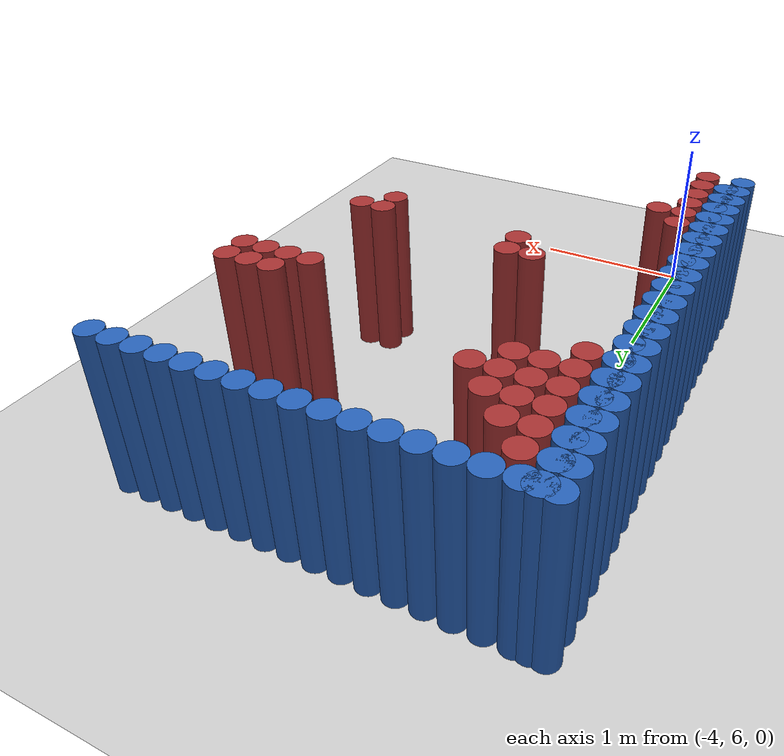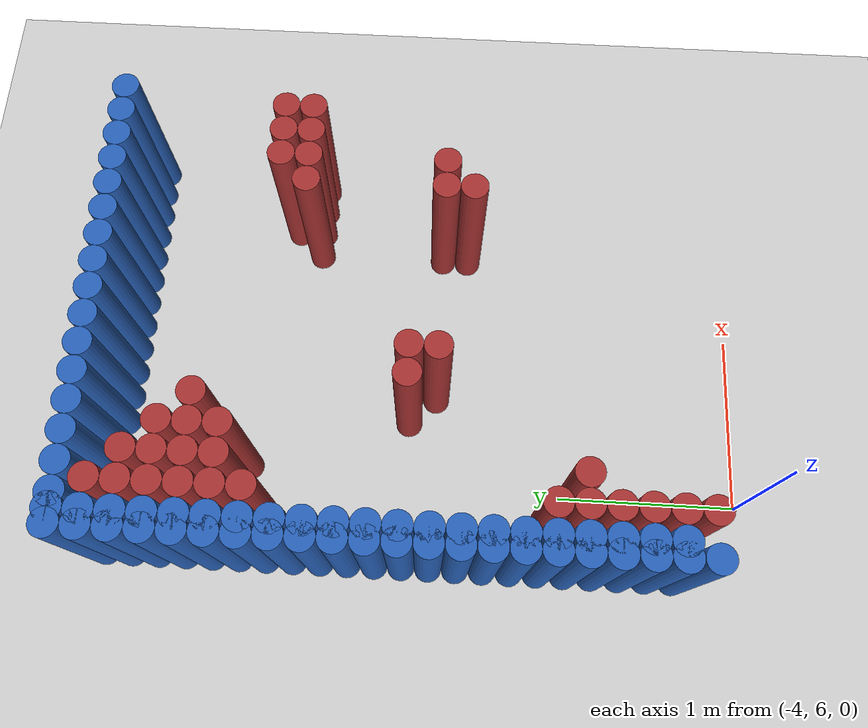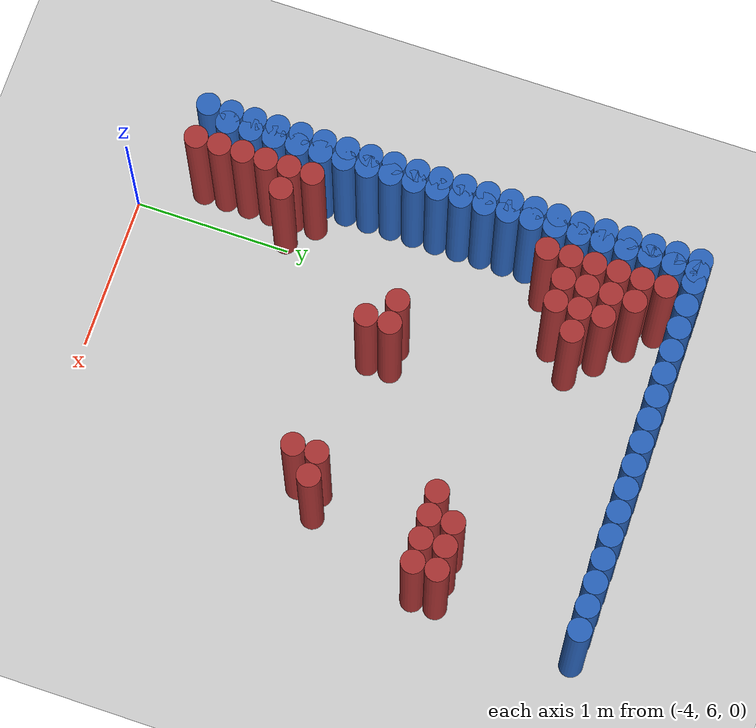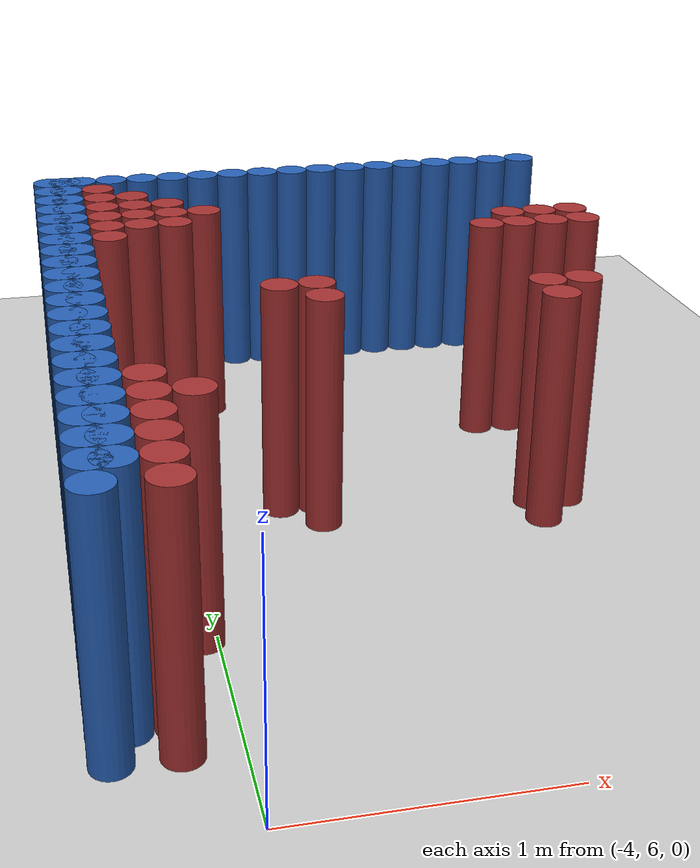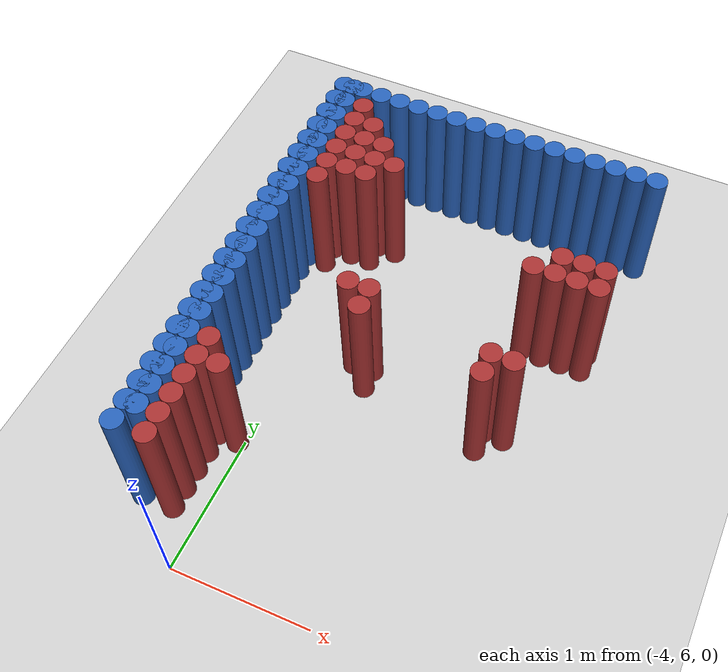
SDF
<sdf version="1.6">
 <world name="barn_world">
  <model name="ground_plane">
   <static>1</static>
   <link name="link">
    <collision name="collision">
     <geometry><plane><normal>0 0 1</normal><size>100 100</size></plane></geometry>
    </collision>
    <visual name="visual">
     <geometry><plane><normal>0 0 1</normal><size>100 100</size></plane></geometry>
     <material>
      <script><uri>file://media/materials/scripts/gazebo.material</uri><name>Gazebo/Grey</name></script>
     </material>
    </visual>
   </link>
  </model>
  <model name="unit_cylinder_135">
   <static>1</static>
   <pose>-4.3500 6.5250 0.5 0 0 0</pose>
   <link name="link">
    <collision name="collision">
     <geometry><cylinder><radius>0.075</radius><length>1</length></cylinder></geometry>
    </collision>
    <visual name="visual">
     <geometry><cylinder><radius>0.075</radius><length>1</length></cylinder></geometry>
     <material><ambient>0.152 0.379 0.72 1</ambient><diffuse>0.152 0.379 0.72 1</diffuse></material>
    </visual>
   </link>
  </model>
  <model name="unit_cylinder_136">
   <static>1</static>
   <pose>-4.3500 6.6750 0.5 0 0 0</pose>
   <link name="link">
    <collision name="collision">
     <geometry><cylinder><radius>0.075</radius><length>1</length></cylinder></geometry>
    </collision>
    <visual name="visual">
     <geometry><cylinder><radius>0.075</radius><length>1</length></cylinder></geometry>
     <material><ambient>0.152 0.379 0.72 1</ambient><diffuse>0.152 0.379 0.72 1</diffuse></material>
    </visual>
   </link>
  </model>
  <model name="unit_cylinder_137">
   <static>1</static>
   <pose>-4.3500 6.8250 0.5 0 0 0</pose>
   <link name="link">
    <collision name="collision">
     <geometry><cylinder><radius>0.075</radius><length>1</length></cylinder></geometry>
    </collision>
    <visual name="visual">
     <geometry><cylinder><radius>0.075</radius><length>1</length></cylinder></geometry>
     <material><ambient>0.152 0.379 0.72 1</ambient><diffuse>0.152 0.379 0.72 1</diffuse></material>
    </visual>
   </link>
  </model>
  <model name="unit_cylinder_138">
   <static>1</static>
   <pose>-4.3500 6.9750 0.5 0 0 0</pose>
   <link name="link">
    <collision name="collision">
     <geometry><cylinder><radius>0.075</radius><length>1</length></cylinder></geometry>
    </collision>
    <visual name="visual">
     <geometry><cylinder><radius>0.075</radius><length>1</length></cylinder></geometry>
     <material><ambient>0.152 0.379 0.72 1</ambient><diffuse>0.152 0.379 0.72 1</diffuse></material>
    </visual>
   </link>
  </model>
  <model name="unit_cylinder_139">
   <static>1</static>
   <pose>-4.3500 7.1250 0.5 0 0 0</pose>
   <link name="link">
    <collision name="collision">
     <geometry><cylinder><radius>0.075</radius><length>1</length></cylinder></geometry>
    </collision>
    <visual name="visual">
     <geometry><cylinder><radius>0.075</radius><length>1</length></cylinder></geometry>
     <material><ambient>0.152 0.379 0.72 1</ambient><diffuse>0.152 0.379 0.72 1</diffuse></material>
    </visual>
   </link>
  </model>
  <model name="unit_cylinder_140">
   <static>1</static>
   <pose>-4.3500 7.2750 0.5 0 0 0</pose>
   <link name="link">
    <collision name="collision">
     <geometry><cylinder><radius>0.075</radius><length>1</length></cylinder></geometry>
    </collision>
    <visual name="visual">
     <geometry><cylinder><radius>0.075</radius><length>1</length></cylinder></geometry>
     <material><ambient>0.152 0.379 0.72 1</ambient><diffuse>0.152 0.379 0.72 1</diffuse></material>
    </visual>
   </link>
  </model>
  <model name="unit_cylinder_141">
   <static>1</static>
   <pose>-4.3500 7.4250 0.5 0 0 0</pose>
   <link name="link">
    <collision name="collision">
     <geometry><cylinder><radius>0.075</radius><length>1</length></cylinder></geometry>
    </collision>
    <visual name="visual">
     <geometry><cylinder><radius>0.075</radius><length>1</length></cylinder></geometry>
     <material><ambient>0.152 0.379 0.72 1</ambient><diffuse>0.152 0.379 0.72 1</diffuse></material>
    </visual>
   </link>
  </model>
  <model name="unit_cylinder_142">
   <static>1</static>
   <pose>-4.3500 7.5750 0.5 0 0 0</pose>
   <link name="link">
    <collision name="collision">
     <geometry><cylinder><radius>0.075</radius><length>1</length></cylinder></geometry>
    </collision>
    <visual name="visual">
     <geometry><cylinder><radius>0.075</radius><length>1</length></cylinder></geometry>
     <material><ambient>0.152 0.379 0.72 1</ambient><diffuse>0.152 0.379 0.72 1</diffuse></material>
    </visual>
   </link>
  </model>
  <model name="unit_cylinder_143">
   <static>1</static>
   <pose>-4.3500 7.7250 0.5 0 0 0</pose>
   <link name="link">
    <collision name="collision">
     <geometry><cylinder><radius>0.075</radius><length>1</length></cylinder></geometry>
    </collision>
    <visual name="visual">
     <geometry><cylinder><radius>0.075</radius><length>1</length></cylinder></geometry>
     <material><ambient>0.152 0.379 0.72 1</ambient><diffuse>0.152 0.379 0.72 1</diffuse></material>
    </visual>
   </link>
  </model>
  <model name="unit_cylinder_144">
   <static>1</static>
   <pose>-4.3500 7.8750 0.5 0 0 0</pose>
   <link name="link">
    <collision name="collision">
     <geometry><cylinder><radius>0.075</radius><length>1</length></cylinder></geometry>
    </collision>
    <visual name="visual">
     <geometry><cylinder><radius>0.075</radius><length>1</length></cylinder></geometry>
     <material><ambient>0.152 0.379 0.72 1</ambient><diffuse>0.152 0.379 0.72 1</diffuse></material>
    </visual>
   </link>
  </model>
  <model name="unit_cylinder_145">
   <static>1</static>
   <pose>-4.3500 8.0250 0.5 0 0 0</pose>
   <link name="link">
    <collision name="collision">
     <geometry><cylinder><radius>0.075</radius><length>1</length></cylinder></geometry>
    </collision>
    <visual name="visual">
     <geometry><cylinder><radius>0.075</radius><length>1</length></cylinder></geometry>
     <material><ambient>0.152 0.379 0.72 1</ambient><diffuse>0.152 0.379 0.72 1</diffuse></material>
    </visual>
   </link>
  </model>
  <model name="unit_cylinder_146">
   <static>1</static>
   <pose>-4.3500 8.1750 0.5 0 0 0</pose>
   <link name="link">
    <collision name="collision">
     <geometry><cylinder><radius>0.075</radius><length>1</length></cylinder></geometry>
    </collision>
    <visual name="visual">
     <geometry><cylinder><radius>0.075</radius><length>1</length></cylinder></geometry>
     <material><ambient>0.152 0.379 0.72 1</ambient><diffuse>0.152 0.379 0.72 1</diffuse></material>
    </visual>
   </link>
  </model>
  <model name="unit_cylinder_147">
   <static>1</static>
   <pose>-4.3500 8.3250 0.5 0 0 0</pose>
   <link name="link">
    <collision name="collision">
     <geometry><cylinder><radius>0.075</radius><length>1</length></cylinder></geometry>
    </collision>
    <visual name="visual">
     <geometry><cylinder><radius>0.075</radius><length>1</length></cylinder></geometry>
     <material><ambient>0.152 0.379 0.72 1</ambient><diffuse>0.152 0.379 0.72 1</diffuse></material>
    </visual>
   </link>
  </model>
  <model name="unit_cylinder_148">
   <static>1</static>
   <pose>-4.3500 8.4750 0.5 0 0 0</pose>
   <link name="link">
    <collision name="collision">
     <geometry><cylinder><radius>0.075</radius><length>1</length></cylinder></geometry>
    </collision>
    <visual name="visual">
     <geometry><cylinder><radius>0.075</radius><length>1</length></cylinder></geometry>
     <material><ambient>0.152 0.379 0.72 1</ambient><diffuse>0.152 0.379 0.72 1</diffuse></material>
    </visual>
   </link>
  </model>
  <model name="unit_cylinder_149">
   <static>1</static>
   <pose>-4.3500 8.6250 0.5 0 0 0</pose>
   <link name="link">
    <collision name="collision">
     <geometry><cylinder><radius>0.075</radius><length>1</length></cylinder></geometry>
    </collision>
    <visual name="visual">
     <geometry><cylinder><radius>0.075</radius><length>1</length></cylinder></geometry>
     <material><ambient>0.152 0.379 0.72 1</ambient><diffuse>0.152 0.379 0.72 1</diffuse></material>
    </visual>
   </link>
  </model>
  <model name="unit_cylinder_150">
   <static>1</static>
   <pose>-4.3500 8.7750 0.5 0 0 0</pose>
   <link name="link">
    <collision name="collision">
     <geometry><cylinder><radius>0.075</radius><length>1</length></cylinder></geometry>
    </collision>
    <visual name="visual">
     <geometry><cylinder><radius>0.075</radius><length>1</length></cylinder></geometry>
     <material><ambient>0.152 0.379 0.72 1</ambient><diffuse>0.152 0.379 0.72 1</diffuse></material>
    </visual>
   </link>
  </model>
  <model name="unit_cylinder_151">
   <static>1</static>
   <pose>-4.3500 8.9250 0.5 0 0 0</pose>
   <link name="link">
    <collision name="collision">
     <geometry><cylinder><radius>0.075</radius><length>1</length></cylinder></geometry>
    </collision>
    <visual name="visual">
     <geometry><cylinder><radius>0.075</radius><length>1</length></cylinder></geometry>
     <material><ambient>0.152 0.379 0.72 1</ambient><diffuse>0.152 0.379 0.72 1</diffuse></material>
    </visual>
   </link>
  </model>
  <model name="unit_cylinder_152">
   <static>1</static>
   <pose>-4.3500 9.0750 0.5 0 0 0</pose>
   <link name="link">
    <collision name="collision">
     <geometry><cylinder><radius>0.075</radius><length>1</length></cylinder></geometry>
    </collision>
    <visual name="visual">
     <geometry><cylinder><radius>0.075</radius><length>1</length></cylinder></geometry>
     <material><ambient>0.152 0.379 0.72 1</ambient><diffuse>0.152 0.379 0.72 1</diffuse></material>
    </visual>
   </link>
  </model>
  <model name="unit_cylinder_153">
   <static>1</static>
   <pose>-4.3500 9.2250 0.5 0 0 0</pose>
   <link name="link">
    <collision name="collision">
     <geometry><cylinder><radius>0.075</radius><length>1</length></cylinder></geometry>
    </collision>
    <visual name="visual">
     <geometry><cylinder><radius>0.075</radius><length>1</length></cylinder></geometry>
     <material><ambient>0.152 0.379 0.72 1</ambient><diffuse>0.152 0.379 0.72 1</diffuse></material>
    </visual>
   </link>
  </model>
  <model name="unit_cylinder_154">
   <static>1</static>
   <pose>-4.3500 9.3750 0.5 0 0 0</pose>
   <link name="link">
    <collision name="collision">
     <geometry><cylinder><radius>0.075</radius><length>1</length></cylinder></geometry>
    </collision>
    <visual name="visual">
     <geometry><cylinder><radius>0.075</radius><length>1</length></cylinder></geometry>
     <material><ambient>0.152 0.379 0.72 1</ambient><diffuse>0.152 0.379 0.72 1</diffuse></material>
    </visual>
   </link>
  </model>
  <model name="unit_cylinder_155">
   <static>1</static>
   <pose>-4.3500 9.5250 0.5 0 0 0</pose>
   <link name="link">
    <collision name="collision">
     <geometry><cylinder><radius>0.075</radius><length>1</length></cylinder></geometry>
    </collision>
    <visual name="visual">
     <geometry><cylinder><radius>0.075</radius><length>1</length></cylinder></geometry>
     <material><ambient>0.152 0.379 0.72 1</ambient><diffuse>0.152 0.379 0.72 1</diffuse></material>
    </visual>
   </link>
  </model>
  <model name="unit_cylinder_162">
   <static>1</static>
   <pose>-4.2000 6.3750 0.5 0 0 0</pose>
   <link name="link">
    <collision name="collision">
     <geometry><cylinder><radius>0.075</radius><length>1</length></cylinder></geometry>
    </collision>
    <visual name="visual">
     <geometry><cylinder><radius>0.075</radius><length>1</length></cylinder></geometry>
     <material><ambient>0.648 0.192 0.192 1</ambient><diffuse>0.648 0.192 0.192 1</diffuse></material>
    </visual>
   </link>
  </model>
  <model name="unit_cylinder_163">
   <static>1</static>
   <pose>-4.2000 6.5250 0.5 0 0 0</pose>
   <link name="link">
    <collision name="collision">
     <geometry><cylinder><radius>0.075</radius><length>1</length></cylinder></geometry>
    </collision>
    <visual name="visual">
     <geometry><cylinder><radius>0.075</radius><length>1</length></cylinder></geometry>
     <material><ambient>0.648 0.192 0.192 1</ambient><diffuse>0.648 0.192 0.192 1</diffuse></material>
    </visual>
   </link>
  </model>
  <model name="unit_cylinder_164">
   <static>1</static>
   <pose>-4.2000 6.6750 0.5 0 0 0</pose>
   <link name="link">
    <collision name="collision">
     <geometry><cylinder><radius>0.075</radius><length>1</length></cylinder></geometry>
    </collision>
    <visual name="visual">
     <geometry><cylinder><radius>0.075</radius><length>1</length></cylinder></geometry>
     <material><ambient>0.648 0.192 0.192 1</ambient><diffuse>0.648 0.192 0.192 1</diffuse></material>
    </visual>
   </link>
  </model>
  <model name="unit_cylinder_165">
   <static>1</static>
   <pose>-4.2000 6.8250 0.5 0 0 0</pose>
   <link name="link">
    <collision name="collision">
     <geometry><cylinder><radius>0.075</radius><length>1</length></cylinder></geometry>
    </collision>
    <visual name="visual">
     <geometry><cylinder><radius>0.075</radius><length>1</length></cylinder></geometry>
     <material><ambient>0.648 0.192 0.192 1</ambient><diffuse>0.648 0.192 0.192 1</diffuse></material>
    </visual>
   </link>
  </model>
  <model name="unit_cylinder_166">
   <static>1</static>
   <pose>-4.2000 6.9750 0.5 0 0 0</pose>
   <link name="link">
    <collision name="collision">
     <geometry><cylinder><radius>0.075</radius><length>1</length></cylinder></geometry>
    </collision>
    <visual name="visual">
     <geometry><cylinder><radius>0.075</radius><length>1</length></cylinder></geometry>
     <material><ambient>0.648 0.192 0.192 1</ambient><diffuse>0.648 0.192 0.192 1</diffuse></material>
    </visual>
   </link>
  </model>
  <model name="unit_cylinder_167">
   <static>1</static>
   <pose>-4.2000 7.1250 0.5 0 0 0</pose>
   <link name="link">
    <collision name="collision">
     <geometry><cylinder><radius>0.075</radius><length>1</length></cylinder></geometry>
    </collision>
    <visual name="visual">
     <geometry><cylinder><radius>0.075</radius><length>1</length></cylinder></geometry>
     <material><ambient>0.648 0.192 0.192 1</ambient><diffuse>0.648 0.192 0.192 1</diffuse></material>
    </visual>
   </link>
  </model>
  <model name="unit_cylinder_168">
   <static>1</static>
   <pose>-4.2000 8.6250 0.5 0 0 0</pose>
   <link name="link">
    <collision name="collision">
     <geometry><cylinder><radius>0.075</radius><length>1</length></cylinder></geometry>
    </collision>
    <visual name="visual">
     <geometry><cylinder><radius>0.075</radius><length>1</length></cylinder></geometry>
     <material><ambient>0.648 0.192 0.192 1</ambient><diffuse>0.648 0.192 0.192 1</diffuse></material>
    </visual>
   </link>
  </model>
  <model name="unit_cylinder_169">
   <static>1</static>
   <pose>-4.2000 8.7750 0.5 0 0 0</pose>
   <link name="link">
    <collision name="collision">
     <geometry><cylinder><radius>0.075</radius><length>1</length></cylinder></geometry>
    </collision>
    <visual name="visual">
     <geometry><cylinder><radius>0.075</radius><length>1</length></cylinder></geometry>
     <material><ambient>0.648 0.192 0.192 1</ambient><diffuse>0.648 0.192 0.192 1</diffuse></material>
    </visual>
   </link>
  </model>
  <model name="unit_cylinder_170">
   <static>1</static>
   <pose>-4.2000 8.9250 0.5 0 0 0</pose>
   <link name="link">
    <collision name="collision">
     <geometry><cylinder><radius>0.075</radius><length>1</length></cylinder></geometry>
    </collision>
    <visual name="visual">
     <geometry><cylinder><radius>0.075</radius><length>1</length></cylinder></geometry>
     <material><ambient>0.648 0.192 0.192 1</ambient><diffuse>0.648 0.192 0.192 1</diffuse></material>
    </visual>
   </link>
  </model>
  <model name="unit_cylinder_171">
   <static>1</static>
   <pose>-4.2000 9.0750 0.5 0 0 0</pose>
   <link name="link">
    <collision name="collision">
     <geometry><cylinder><radius>0.075</radius><length>1</length></cylinder></geometry>
    </collision>
    <visual name="visual">
     <geometry><cylinder><radius>0.075</radius><length>1</length></cylinder></geometry>
     <material><ambient>0.648 0.192 0.192 1</ambient><diffuse>0.648 0.192 0.192 1</diffuse></material>
    </visual>
   </link>
  </model>
  <model name="unit_cylinder_172">
   <static>1</static>
   <pose>-4.2000 9.2250 0.5 0 0 0</pose>
   <link name="link">
    <collision name="collision">
     <geometry><cylinder><radius>0.075</radius><length>1</length></cylinder></geometry>
    </collision>
    <visual name="visual">
     <geometry><cylinder><radius>0.075</radius><length>1</length></cylinder></geometry>
     <material><ambient>0.648 0.192 0.192 1</ambient><diffuse>0.648 0.192 0.192 1</diffuse></material>
    </visual>
   </link>
  </model>
  <model name="unit_cylinder_173">
   <static>1</static>
   <pose>-4.2000 9.3750 0.5 0 0 0</pose>
   <link name="link">
    <collision name="collision">
     <geometry><cylinder><radius>0.075</radius><length>1</length></cylinder></geometry>
    </collision>
    <visual name="visual">
     <geometry><cylinder><radius>0.075</radius><length>1</length></cylinder></geometry>
     <material><ambient>0.648 0.192 0.192 1</ambient><diffuse>0.648 0.192 0.192 1</diffuse></material>
    </visual>
   </link>
  </model>
  <model name="unit_cylinder_178">
   <static>1</static>
   <pose>-4.0500 6.9750 0.5 0 0 0</pose>
   <link name="link">
    <collision name="collision">
     <geometry><cylinder><radius>0.075</radius><length>1</length></cylinder></geometry>
    </collision>
    <visual name="visual">
     <geometry><cylinder><radius>0.075</radius><length>1</length></cylinder></geometry>
     <material><ambient>0.648 0.192 0.192 1</ambient><diffuse>0.648 0.192 0.192 1</diffuse></material>
    </visual>
   </link>
  </model>
  <model name="unit_cylinder_179">
   <static>1</static>
   <pose>-4.0500 8.7750 0.5 0 0 0</pose>
   <link name="link">
    <collision name="collision">
     <geometry><cylinder><radius>0.075</radius><length>1</length></cylinder></geometry>
    </collision>
    <visual name="visual">
     <geometry><cylinder><radius>0.075</radius><length>1</length></cylinder></geometry>
     <material><ambient>0.648 0.192 0.192 1</ambient><diffuse>0.648 0.192 0.192 1</diffuse></material>
    </visual>
   </link>
  </model>
  <model name="unit_cylinder_180">
   <static>1</static>
   <pose>-4.0500 8.9250 0.5 0 0 0</pose>
   <link name="link">
    <collision name="collision">
     <geometry><cylinder><radius>0.075</radius><length>1</length></cylinder></geometry>
    </collision>
    <visual name="visual">
     <geometry><cylinder><radius>0.075</radius><length>1</length></cylinder></geometry>
     <material><ambient>0.648 0.192 0.192 1</ambient><diffuse>0.648 0.192 0.192 1</diffuse></material>
    </visual>
   </link>
  </model>
  <model name="unit_cylinder_181">
   <static>1</static>
   <pose>-4.0500 9.0750 0.5 0 0 0</pose>
   <link name="link">
    <collision name="collision">
     <geometry><cylinder><radius>0.075</radius><length>1</length></cylinder></geometry>
    </collision>
    <visual name="visual">
     <geometry><cylinder><radius>0.075</radius><length>1</length></cylinder></geometry>
     <material><ambient>0.648 0.192 0.192 1</ambient><diffuse>0.648 0.192 0.192 1</diffuse></material>
    </visual>
   </link>
  </model>
  <model name="unit_cylinder_182">
   <static>1</static>
   <pose>-4.0500 9.2250 0.5 0 0 0</pose>
   <link name="link">
    <collision name="collision">
     <geometry><cylinder><radius>0.075</radius><length>1</length></cylinder></geometry>
    </collision>
    <visual name="visual">
     <geometry><cylinder><radius>0.075</radius><length>1</length></cylinder></geometry>
     <material><ambient>0.648 0.192 0.192 1</ambient><diffuse>0.648 0.192 0.192 1</diffuse></material>
    </visual>
   </link>
  </model>
  <model name="unit_cylinder_187">
   <static>1</static>
   <pose>-3.9000 8.7750 0.5 0 0 0</pose>
   <link name="link">
    <collision name="collision">
     <geometry><cylinder><radius>0.075</radius><length>1</length></cylinder></geometry>
    </collision>
    <visual name="visual">
     <geometry><cylinder><radius>0.075</radius><length>1</length></cylinder></geometry>
     <material><ambient>0.648 0.192 0.192 1</ambient><diffuse>0.648 0.192 0.192 1</diffuse></material>
    </visual>
   </link>
  </model>
  <model name="unit_cylinder_188">
   <static>1</static>
   <pose>-3.9000 8.9250 0.5 0 0 0</pose>
   <link name="link">
    <collision name="collision">
     <geometry><cylinder><radius>0.075</radius><length>1</length></cylinder></geometry>
    </collision>
    <visual name="visual">
     <geometry><cylinder><radius>0.075</radius><length>1</length></cylinder></geometry>
     <material><ambient>0.648 0.192 0.192 1</ambient><diffuse>0.648 0.192 0.192 1</diffuse></material>
    </visual>
   </link>
  </model>
  <model name="unit_cylinder_189">
   <static>1</static>
   <pose>-3.9000 9.0750 0.5 0 0 0</pose>
   <link name="link">
    <collision name="collision">
     <geometry><cylinder><radius>0.075</radius><length>1</length></cylinder></geometry>
    </collision>
    <visual name="visual">
     <geometry><cylinder><radius>0.075</radius><length>1</length></cylinder></geometry>
     <material><ambient>0.648 0.192 0.192 1</ambient><diffuse>0.648 0.192 0.192 1</diffuse></material>
    </visual>
   </link>
  </model>
  <model name="unit_cylinder_193">
   <static>1</static>
   <pose>-3.7500 8.9250 0.5 0 0 0</pose>
   <link name="link">
    <collision name="collision">
     <geometry><cylinder><radius>0.075</radius><length>1</length></cylinder></geometry>
    </collision>
    <visual name="visual">
     <geometry><cylinder><radius>0.075</radius><length>1</length></cylinder></geometry>
     <material><ambient>0.648 0.192 0.192 1</ambient><diffuse>0.648 0.192 0.192 1</diffuse></material>
    </visual>
   </link>
  </model>
  <model name="unit_cylinder_195">
   <static>1</static>
   <pose>-3.6000 7.8750 0.5 0 0 0</pose>
   <link name="link">
    <collision name="collision">
     <geometry><cylinder><radius>0.075</radius><length>1</length></cylinder></geometry>
    </collision>
    <visual name="visual">
     <geometry><cylinder><radius>0.075</radius><length>1</length></cylinder></geometry>
     <material><ambient>0.648 0.192 0.192 1</ambient><diffuse>0.648 0.192 0.192 1</diffuse></material>
    </visual>
   </link>
  </model>
  <model name="unit_cylinder_196">
   <static>1</static>
   <pose>-3.4500 7.7250 0.5 0 0 0</pose>
   <link name="link">
    <collision name="collision">
     <geometry><cylinder><radius>0.075</radius><length>1</length></cylinder></geometry>
    </collision>
    <visual name="visual">
     <geometry><cylinder><radius>0.075</radius><length>1</length></cylinder></geometry>
     <material><ambient>0.648 0.192 0.192 1</ambient><diffuse>0.648 0.192 0.192 1</diffuse></material>
    </visual>
   </link>
  </model>
  <model name="unit_cylinder_197">
   <static>1</static>
   <pose>-3.4500 7.8750 0.5 0 0 0</pose>
   <link name="link">
    <collision name="collision">
     <geometry><cylinder><radius>0.075</radius><length>1</length></cylinder></geometry>
    </collision>
    <visual name="visual">
     <geometry><cylinder><radius>0.075</radius><length>1</length></cylinder></geometry>
     <material><ambient>0.648 0.192 0.192 1</ambient><diffuse>0.648 0.192 0.192 1</diffuse></material>
    </visual>
   </link>
  </model>
  <model name="unit_cylinder_198">
   <static>1</static>
   <pose>-2.5500 7.5750 0.5 0 0 0</pose>
   <link name="link">
    <collision name="collision">
     <geometry><cylinder><radius>0.075</radius><length>1</length></cylinder></geometry>
    </collision>
    <visual name="visual">
     <geometry><cylinder><radius>0.075</radius><length>1</length></cylinder></geometry>
     <material><ambient>0.648 0.192 0.192 1</ambient><diffuse>0.648 0.192 0.192 1</diffuse></material>
    </visual>
   </link>
  </model>
  <model name="unit_cylinder_199">
   <static>1</static>
   <pose>-2.5500 7.7250 0.5 0 0 0</pose>
   <link name="link">
    <collision name="collision">
     <geometry><cylinder><radius>0.075</radius><length>1</length></cylinder></geometry>
    </collision>
    <visual name="visual">
     <geometry><cylinder><radius>0.075</radius><length>1</length></cylinder></geometry>
     <material><ambient>0.648 0.192 0.192 1</ambient><diffuse>0.648 0.192 0.192 1</diffuse></material>
    </visual>
   </link>
  </model>
  <model name="unit_cylinder_200">
   <static>1</static>
   <pose>-2.5500 8.4750 0.5 0 0 0</pose>
   <link name="link">
    <collision name="collision">
     <geometry><cylinder><radius>0.075</radius><length>1</length></cylinder></geometry>
    </collision>
    <visual name="visual">
     <geometry><cylinder><radius>0.075</radius><length>1</length></cylinder></geometry>
     <material><ambient>0.648 0.192 0.192 1</ambient><diffuse>0.648 0.192 0.192 1</diffuse></material>
    </visual>
   </link>
  </model>
  <model name="unit_cylinder_201">
   <static>1</static>
   <pose>-2.4000 7.7250 0.5 0 0 0</pose>
   <link name="link">
    <collision name="collision">
     <geometry><cylinder><radius>0.075</radius><length>1</length></cylinder></geometry>
    </collision>
    <visual name="visual">
     <geometry><cylinder><radius>0.075</radius><length>1</length></cylinder></geometry>
     <material><ambient>0.648 0.192 0.192 1</ambient><diffuse>0.648 0.192 0.192 1</diffuse></material>
    </visual>
   </link>
  </model>
  <model name="unit_cylinder_202">
   <static>1</static>
   <pose>-2.4000 8.4750 0.5 0 0 0</pose>
   <link name="link">
    <collision name="collision">
     <geometry><cylinder><radius>0.075</radius><length>1</length></cylinder></geometry>
    </collision>
    <visual name="visual">
     <geometry><cylinder><radius>0.075</radius><length>1</length></cylinder></geometry>
     <material><ambient>0.648 0.192 0.192 1</ambient><diffuse>0.648 0.192 0.192 1</diffuse></material>
    </visual>
   </link>
  </model>
  <model name="unit_cylinder_203">
   <static>1</static>
   <pose>-2.4000 8.6250 0.5 0 0 0</pose>
   <link name="link">
    <collision name="collision">
     <geometry><cylinder><radius>0.075</radius><length>1</length></cylinder></geometry>
    </collision>
    <visual name="visual">
     <geometry><cylinder><radius>0.075</radius><length>1</length></cylinder></geometry>
     <material><ambient>0.648 0.192 0.192 1</ambient><diffuse>0.648 0.192 0.192 1</diffuse></material>
    </visual>
   </link>
  </model>
  <model name="unit_cylinder_205">
   <static>1</static>
   <pose>-2.2500 8.4750 0.5 0 0 0</pose>
   <link name="link">
    <collision name="collision">
     <geometry><cylinder><radius>0.075</radius><length>1</length></cylinder></geometry>
    </collision>
    <visual name="visual">
     <geometry><cylinder><radius>0.075</radius><length>1</length></cylinder></geometry>
     <material><ambient>0.648 0.192 0.192 1</ambient><diffuse>0.648 0.192 0.192 1</diffuse></material>
    </visual>
   </link>
  </model>
  <model name="unit_cylinder_206">
   <static>1</static>
   <pose>-2.2500 8.6250 0.5 0 0 0</pose>
   <link name="link">
    <collision name="collision">
     <geometry><cylinder><radius>0.075</radius><length>1</length></cylinder></geometry>
    </collision>
    <visual name="visual">
     <geometry><cylinder><radius>0.075</radius><length>1</length></cylinder></geometry>
     <material><ambient>0.648 0.192 0.192 1</ambient><diffuse>0.648 0.192 0.192 1</diffuse></material>
    </visual>
   </link>
  </model>
  <model name="unit_cylinder_209">
   <static>1</static>
   <pose>-2.1000 8.4750 0.5 0 0 0</pose>
   <link name="link">
    <collision name="collision">
     <geometry><cylinder><radius>0.075</radius><length>1</length></cylinder></geometry>
    </collision>
    <visual name="visual">
     <geometry><cylinder><radius>0.075</radius><length>1</length></cylinder></geometry>
     <material><ambient>0.648 0.192 0.192 1</ambient><diffuse>0.648 0.192 0.192 1</diffuse></material>
    </visual>
   </link>
  </model>
  <model name="unit_cylinder_210">
   <static>1</static>
   <pose>-2.1000 8.6250 0.5 0 0 0</pose>
   <link name="link">
    <collision name="collision">
     <geometry><cylinder><radius>0.075</radius><length>1</length></cylinder></geometry>
    </collision>
    <visual name="visual">
     <geometry><cylinder><radius>0.075</radius><length>1</length></cylinder></geometry>
     <material><ambient>0.648 0.192 0.192 1</ambient><diffuse>0.648 0.192 0.192 1</diffuse></material>
    </visual>
   </link>
  </model>
  <model name="unit_cylinder_297">
   <static>1</static>
   <pose>-2.0250 9.5250 0.5 0 0 0</pose>
   <link name="link">
    <collision name="collision">
     <geometry><cylinder><radius>0.075</radius><length>1</length></cylinder></geometry>
    </collision>
    <visual name="visual">
     <geometry><cylinder><radius>0.075</radius><length>1</length></cylinder></geometry>
     <material><ambient>0.152 0.379 0.72 1</ambient><diffuse>0.152 0.379 0.72 1</diffuse></material>
    </visual>
   </link>
  </model>
  <model name="unit_cylinder_298">
   <static>1</static>
   <pose>-2.1750 9.5250 0.5 0 0 0</pose>
   <link name="link">
    <collision name="collision">
     <geometry><cylinder><radius>0.075</radius><length>1</length></cylinder></geometry>
    </collision>
    <visual name="visual">
     <geometry><cylinder><radius>0.075</radius><length>1</length></cylinder></geometry>
     <material><ambient>0.152 0.379 0.72 1</ambient><diffuse>0.152 0.379 0.72 1</diffuse></material>
    </visual>
   </link>
  </model>
  <model name="unit_cylinder_299">
   <static>1</static>
   <pose>-2.3250 9.5250 0.5 0 0 0</pose>
   <link name="link">
    <collision name="collision">
     <geometry><cylinder><radius>0.075</radius><length>1</length></cylinder></geometry>
    </collision>
    <visual name="visual">
     <geometry><cylinder><radius>0.075</radius><length>1</length></cylinder></geometry>
     <material><ambient>0.152 0.379 0.72 1</ambient><diffuse>0.152 0.379 0.72 1</diffuse></material>
    </visual>
   </link>
  </model>
  <model name="unit_cylinder_300">
   <static>1</static>
   <pose>-2.4750 9.5250 0.5 0 0 0</pose>
   <link name="link">
    <collision name="collision">
     <geometry><cylinder><radius>0.075</radius><length>1</length></cylinder></geometry>
    </collision>
    <visual name="visual">
     <geometry><cylinder><radius>0.075</radius><length>1</length></cylinder></geometry>
     <material><ambient>0.152 0.379 0.72 1</ambient><diffuse>0.152 0.379 0.72 1</diffuse></material>
    </visual>
   </link>
  </model>
  <model name="unit_cylinder_301">
   <static>1</static>
   <pose>-2.6250 9.5250 0.5 0 0 0</pose>
   <link name="link">
    <collision name="collision">
     <geometry><cylinder><radius>0.075</radius><length>1</length></cylinder></geometry>
    </collision>
    <visual name="visual">
     <geometry><cylinder><radius>0.075</radius><length>1</length></cylinder></geometry>
     <material><ambient>0.152 0.379 0.72 1</ambient><diffuse>0.152 0.379 0.72 1</diffuse></material>
    </visual>
   </link>
  </model>
  <model name="unit_cylinder_302">
   <static>1</static>
   <pose>-2.7750 9.5250 0.5 0 0 0</pose>
   <link name="link">
    <collision name="collision">
     <geometry><cylinder><radius>0.075</radius><length>1</length></cylinder></geometry>
    </collision>
    <visual name="visual">
     <geometry><cylinder><radius>0.075</radius><length>1</length></cylinder></geometry>
     <material><ambient>0.152 0.379 0.72 1</ambient><diffuse>0.152 0.379 0.72 1</diffuse></material>
    </visual>
   </link>
  </model>
  <model name="unit_cylinder_303">
   <static>1</static>
   <pose>-2.9250 9.5250 0.5 0 0 0</pose>
   <link name="link">
    <collision name="collision">
     <geometry><cylinder><radius>0.075</radius><length>1</length></cylinder></geometry>
    </collision>
    <visual name="visual">
     <geometry><cylinder><radius>0.075</radius><length>1</length></cylinder></geometry>
     <material><ambient>0.152 0.379 0.72 1</ambient><diffuse>0.152 0.379 0.72 1</diffuse></material>
    </visual>
   </link>
  </model>
  <model name="unit_cylinder_304">
   <static>1</static>
   <pose>-3.0750 9.5250 0.5 0 0 0</pose>
   <link name="link">
    <collision name="collision">
     <geometry><cylinder><radius>0.075</radius><length>1</length></cylinder></geometry>
    </collision>
    <visual name="visual">
     <geometry><cylinder><radius>0.075</radius><length>1</length></cylinder></geometry>
     <material><ambient>0.152 0.379 0.72 1</ambient><diffuse>0.152 0.379 0.72 1</diffuse></material>
    </visual>
   </link>
  </model>
  <model name="unit_cylinder_305">
   <static>1</static>
   <pose>-3.2250 9.5250 0.5 0 0 0</pose>
   <link name="link">
    <collision name="collision">
     <geometry><cylinder><radius>0.075</radius><length>1</length></cylinder></geometry>
    </collision>
    <visual name="visual">
     <geometry><cylinder><radius>0.075</radius><length>1</length></cylinder></geometry>
     <material><ambient>0.152 0.379 0.72 1</ambient><diffuse>0.152 0.379 0.72 1</diffuse></material>
    </visual>
   </link>
  </model>
  <model name="unit_cylinder_306">
   <static>1</static>
   <pose>-3.3750 9.5250 0.5 0 0 0</pose>
   <link name="link">
    <collision name="collision">
     <geometry><cylinder><radius>0.075</radius><length>1</length></cylinder></geometry>
    </collision>
    <visual name="visual">
     <geometry><cylinder><radius>0.075</radius><length>1</length></cylinder></geometry>
     <material><ambient>0.152 0.379 0.72 1</ambient><diffuse>0.152 0.379 0.72 1</diffuse></material>
    </visual>
   </link>
  </model>
  <model name="unit_cylinder_307">
   <static>1</static>
   <pose>-3.5250 9.5250 0.5 0 0 0</pose>
   <link name="link">
    <collision name="collision">
     <geometry><cylinder><radius>0.075</radius><length>1</length></cylinder></geometry>
    </collision>
    <visual name="visual">
     <geometry><cylinder><radius>0.075</radius><length>1</length></cylinder></geometry>
     <material><ambient>0.152 0.379 0.72 1</ambient><diffuse>0.152 0.379 0.72 1</diffuse></material>
    </visual>
   </link>
  </model>
  <model name="unit_cylinder_308">
   <static>1</static>
   <pose>-3.6750 9.5250 0.5 0 0 0</pose>
   <link name="link">
    <collision name="collision">
     <geometry><cylinder><radius>0.075</radius><length>1</length></cylinder></geometry>
    </collision>
    <visual name="visual">
     <geometry><cylinder><radius>0.075</radius><length>1</length></cylinder></geometry>
     <material><ambient>0.152 0.379 0.72 1</ambient><diffuse>0.152 0.379 0.72 1</diffuse></material>
    </visual>
   </link>
  </model>
  <model name="unit_cylinder_309">
   <static>1</static>
   <pose>-3.8250 9.5250 0.5 0 0 0</pose>
   <link name="link">
    <collision name="collision">
     <geometry><cylinder><radius>0.075</radius><length>1</length></cylinder></geometry>
    </collision>
    <visual name="visual">
     <geometry><cylinder><radius>0.075</radius><length>1</length></cylinder></geometry>
     <material><ambient>0.152 0.379 0.72 1</ambient><diffuse>0.152 0.379 0.72 1</diffuse></material>
    </visual>
   </link>
  </model>
  <model name="unit_cylinder_310">
   <static>1</static>
   <pose>-3.9750 9.5250 0.5 0 0 0</pose>
   <link name="link">
    <collision name="collision">
     <geometry><cylinder><radius>0.075</radius><length>1</length></cylinder></geometry>
    </collision>
    <visual name="visual">
     <geometry><cylinder><radius>0.075</radius><length>1</length></cylinder></geometry>
     <material><ambient>0.152 0.379 0.72 1</ambient><diffuse>0.152 0.379 0.72 1</diffuse></material>
    </visual>
   </link>
  </model>
  <model name="unit_cylinder_311">
   <static>1</static>
   <pose>-4.1250 9.5250 0.5 0 0 0</pose>
   <link name="link">
    <collision name="collision">
     <geometry><cylinder><radius>0.075</radius><length>1</length></cylinder></geometry>
    </collision>
    <visual name="visual">
     <geometry><cylinder><radius>0.075</radius><length>1</length></cylinder></geometry>
     <material><ambient>0.152 0.379 0.72 1</ambient><diffuse>0.152 0.379 0.72 1</diffuse></material>
    </visual>
   </link>
  </model>
  <model name="unit_cylinder_312">
   <static>1</static>
   <pose>-4.2750 9.5250 0.5 0 0 0</pose>
   <link name="link">
    <collision name="collision">
     <geometry><cylinder><radius>0.075</radius><length>1</length></cylinder></geometry>
    </collision>
    <visual name="visual">
     <geometry><cylinder><radius>0.075</radius><length>1</length></cylinder></geometry>
     <material><ambient>0.152 0.379 0.72 1</ambient><diffuse>0.152 0.379 0.72 1</diffuse></material>
    </visual>
   </link>
  </model>
  <model name="unit_cylinder_313">
   <static>1</static>
   <pose>-4.4250 9.5250 0.5 0 0 0</pose>
   <link name="link">
    <collision name="collision">
     <geometry><cylinder><radius>0.075</radius><length>1</length></cylinder></geometry>
    </collision>
    <visual name="visual">
     <geometry><cylinder><radius>0.075</radius><length>1</length></cylinder></geometry>
     <material><ambient>0.152 0.379 0.72 1</ambient><diffuse>0.152 0.379 0.72 1</diffuse></material>
    </visual>
   </link>
  </model>
  <model name="unit_cylinder_331">
   <static>1</static>
   <pose>-4.4250 6.3750 0.5 0 0 0</pose>
   <link name="link">
    <collision name="collision">
     <geometry><cylinder><radius>0.075</radius><length>1</length></cylinder></geometry>
    </collision>
    <visual name="visual">
     <geometry><cylinder><radius>0.075</radius><length>1</length></cylinder></geometry>
     <material><ambient>0.152 0.379 0.72 1</ambient><diffuse>0.152 0.379 0.72 1</diffuse></material>
    </visual>
   </link>
  </model>
  <model name="unit_cylinder_333">
   <static>1</static>
   <pose>-4.4250 6.5250 0.5 0 0 0</pose>
   <link name="link">
    <collision name="collision">
     <geometry><cylinder><radius>0.075</radius><length>1</length></cylinder></geometry>
    </collision>
    <visual name="visual">
     <geometry><cylinder><radius>0.075</radius><length>1</length></cylinder></geometry>
     <material><ambient>0.152 0.379 0.72 1</ambient><diffuse>0.152 0.379 0.72 1</diffuse></material>
    </visual>
   </link>
  </model>
  <model name="unit_cylinder_335">
   <static>1</static>
   <pose>-4.4250 6.6750 0.5 0 0 0</pose>
   <link name="link">
    <collision name="collision">
     <geometry><cylinder><radius>0.075</radius><length>1</length></cylinder></geometry>
    </collision>
    <visual name="visual">
     <geometry><cylinder><radius>0.075</radius><length>1</length></cylinder></geometry>
     <material><ambient>0.152 0.379 0.72 1</ambient><diffuse>0.152 0.379 0.72 1</diffuse></material>
    </visual>
   </link>
  </model>
  <model name="unit_cylinder_337">
   <static>1</static>
   <pose>-4.4250 6.8250 0.5 0 0 0</pose>
   <link name="link">
    <collision name="collision">
     <geometry><cylinder><radius>0.075</radius><length>1</length></cylinder></geometry>
    </collision>
    <visual name="visual">
     <geometry><cylinder><radius>0.075</radius><length>1</length></cylinder></geometry>
     <material><ambient>0.152 0.379 0.72 1</ambient><diffuse>0.152 0.379 0.72 1</diffuse></material>
    </visual>
   </link>
  </model>
  <model name="unit_cylinder_339">
   <static>1</static>
   <pose>-4.4250 6.9750 0.5 0 0 0</pose>
   <link name="link">
    <collision name="collision">
     <geometry><cylinder><radius>0.075</radius><length>1</length></cylinder></geometry>
    </collision>
    <visual name="visual">
     <geometry><cylinder><radius>0.075</radius><length>1</length></cylinder></geometry>
     <material><ambient>0.152 0.379 0.72 1</ambient><diffuse>0.152 0.379 0.72 1</diffuse></material>
    </visual>
   </link>
  </model>
  <model name="unit_cylinder_341">
   <static>1</static>
   <pose>-4.4250 7.1250 0.5 0 0 0</pose>
   <link name="link">
    <collision name="collision">
     <geometry><cylinder><radius>0.075</radius><length>1</length></cylinder></geometry>
    </collision>
    <visual name="visual">
     <geometry><cylinder><radius>0.075</radius><length>1</length></cylinder></geometry>
     <material><ambient>0.152 0.379 0.72 1</ambient><diffuse>0.152 0.379 0.72 1</diffuse></material>
    </visual>
   </link>
  </model>
  <model name="unit_cylinder_343">
   <static>1</static>
   <pose>-4.4250 7.2750 0.5 0 0 0</pose>
   <link name="link">
    <collision name="collision">
     <geometry><cylinder><radius>0.075</radius><length>1</length></cylinder></geometry>
    </collision>
    <visual name="visual">
     <geometry><cylinder><radius>0.075</radius><length>1</length></cylinder></geometry>
     <material><ambient>0.152 0.379 0.72 1</ambient><diffuse>0.152 0.379 0.72 1</diffuse></material>
    </visual>
   </link>
  </model>
  <model name="unit_cylinder_345">
   <static>1</static>
   <pose>-4.4250 7.4250 0.5 0 0 0</pose>
   <link name="link">
    <collision name="collision">
     <geometry><cylinder><radius>0.075</radius><length>1</length></cylinder></geometry>
    </collision>
    <visual name="visual">
     <geometry><cylinder><radius>0.075</radius><length>1</length></cylinder></geometry>
     <material><ambient>0.152 0.379 0.72 1</ambient><diffuse>0.152 0.379 0.72 1</diffuse></material>
    </visual>
   </link>
  </model>
  <model name="unit_cylinder_347">
   <static>1</static>
   <pose>-4.4250 7.5750 0.5 0 0 0</pose>
   <link name="link">
    <collision name="collision">
     <geometry><cylinder><radius>0.075</radius><length>1</length></cylinder></geometry>
    </collision>
    <visual name="visual">
     <geometry><cylinder><radius>0.075</radius><length>1</length></cylinder></geometry>
     <material><ambient>0.152 0.379 0.72 1</ambient><diffuse>0.152 0.379 0.72 1</diffuse></material>
    </visual>
   </link>
  </model>
  <model name="unit_cylinder_349">
   <static>1</static>
   <pose>-4.4250 7.7250 0.5 0 0 0</pose>
   <link name="link">
    <collision name="collision">
     <geometry><cylinder><radius>0.075</radius><length>1</length></cylinder></geometry>
    </collision>
    <visual name="visual">
     <geometry><cylinder><radius>0.075</radius><length>1</length></cylinder></geometry>
     <material><ambient>0.152 0.379 0.72 1</ambient><diffuse>0.152 0.379 0.72 1</diffuse></material>
    </visual>
   </link>
  </model>
  <model name="unit_cylinder_351">
   <static>1</static>
   <pose>-4.4250 7.8750 0.5 0 0 0</pose>
   <link name="link">
    <collision name="collision">
     <geometry><cylinder><radius>0.075</radius><length>1</length></cylinder></geometry>
    </collision>
    <visual name="visual">
     <geometry><cylinder><radius>0.075</radius><length>1</length></cylinder></geometry>
     <material><ambient>0.152 0.379 0.72 1</ambient><diffuse>0.152 0.379 0.72 1</diffuse></material>
    </visual>
   </link>
  </model>
  <model name="unit_cylinder_353">
   <static>1</static>
   <pose>-4.4250 8.0250 0.5 0 0 0</pose>
   <link name="link">
    <collision name="collision">
     <geometry><cylinder><radius>0.075</radius><length>1</length></cylinder></geometry>
    </collision>
    <visual name="visual">
     <geometry><cylinder><radius>0.075</radius><length>1</length></cylinder></geometry>
     <material><ambient>0.152 0.379 0.72 1</ambient><diffuse>0.152 0.379 0.72 1</diffuse></material>
    </visual>
   </link>
  </model>
  <model name="unit_cylinder_355">
   <static>1</static>
   <pose>-4.4250 8.1750 0.5 0 0 0</pose>
   <link name="link">
    <collision name="collision">
     <geometry><cylinder><radius>0.075</radius><length>1</length></cylinder></geometry>
    </collision>
    <visual name="visual">
     <geometry><cylinder><radius>0.075</radius><length>1</length></cylinder></geometry>
     <material><ambient>0.152 0.379 0.72 1</ambient><diffuse>0.152 0.379 0.72 1</diffuse></material>
    </visual>
   </link>
  </model>
  <model name="unit_cylinder_357">
   <static>1</static>
   <pose>-4.4250 8.3250 0.5 0 0 0</pose>
   <link name="link">
    <collision name="collision">
     <geometry><cylinder><radius>0.075</radius><length>1</length></cylinder></geometry>
    </collision>
    <visual name="visual">
     <geometry><cylinder><radius>0.075</radius><length>1</length></cylinder></geometry>
     <material><ambient>0.152 0.379 0.72 1</ambient><diffuse>0.152 0.379 0.72 1</diffuse></material>
    </visual>
   </link>
  </model>
  <model name="unit_cylinder_359">
   <static>1</static>
   <pose>-4.4250 8.4750 0.5 0 0 0</pose>
   <link name="link">
    <collision name="collision">
     <geometry><cylinder><radius>0.075</radius><length>1</length></cylinder></geometry>
    </collision>
    <visual name="visual">
     <geometry><cylinder><radius>0.075</radius><length>1</length></cylinder></geometry>
     <material><ambient>0.152 0.379 0.72 1</ambient><diffuse>0.152 0.379 0.72 1</diffuse></material>
    </visual>
   </link>
  </model>
  <model name="unit_cylinder_361">
   <static>1</static>
   <pose>-4.4250 8.6250 0.5 0 0 0</pose>
   <link name="link">
    <collision name="collision">
     <geometry><cylinder><radius>0.075</radius><length>1</length></cylinder></geometry>
    </collision>
    <visual name="visual">
     <geometry><cylinder><radius>0.075</radius><length>1</length></cylinder></geometry>
     <material><ambient>0.152 0.379 0.72 1</ambient><diffuse>0.152 0.379 0.72 1</diffuse></material>
    </visual>
   </link>
  </model>
  <model name="unit_cylinder_363">
   <static>1</static>
   <pose>-4.4250 8.7750 0.5 0 0 0</pose>
   <link name="link">
    <collision name="collision">
     <geometry><cylinder><radius>0.075</radius><length>1</length></cylinder></geometry>
    </collision>
    <visual name="visual">
     <geometry><cylinder><radius>0.075</radius><length>1</length></cylinder></geometry>
     <material><ambient>0.152 0.379 0.72 1</ambient><diffuse>0.152 0.379 0.72 1</diffuse></material>
    </visual>
   </link>
  </model>
  <model name="unit_cylinder_365">
   <static>1</static>
   <pose>-4.4250 8.9250 0.5 0 0 0</pose>
   <link name="link">
    <collision name="collision">
     <geometry><cylinder><radius>0.075</radius><length>1</length></cylinder></geometry>
    </collision>
    <visual name="visual">
     <geometry><cylinder><radius>0.075</radius><length>1</length></cylinder></geometry>
     <material><ambient>0.152 0.379 0.72 1</ambient><diffuse>0.152 0.379 0.72 1</diffuse></material>
    </visual>
   </link>
  </model>
  <model name="unit_cylinder_367">
   <static>1</static>
   <pose>-4.4250 9.0750 0.5 0 0 0</pose>
   <link name="link">
    <collision name="collision">
     <geometry><cylinder><radius>0.075</radius><length>1</length></cylinder></geometry>
    </collision>
    <visual name="visual">
     <geometry><cylinder><radius>0.075</radius><length>1</length></cylinder></geometry>
     <material><ambient>0.152 0.379 0.72 1</ambient><diffuse>0.152 0.379 0.72 1</diffuse></material>
    </visual>
   </link>
  </model>
  <model name="unit_cylinder_369">
   <static>1</static>
   <pose>-4.4250 9.2250 0.5 0 0 0</pose>
   <link name="link">
    <collision name="collision">
     <geometry><cylinder><radius>0.075</radius><length>1</length></cylinder></geometry>
    </collision>
    <visual name="visual">
     <geometry><cylinder><radius>0.075</radius><length>1</length></cylinder></geometry>
     <material><ambient>0.152 0.379 0.72 1</ambient><diffuse>0.152 0.379 0.72 1</diffuse></material>
    </visual>
   </link>
  </model>
  <model name="unit_cylinder_371">
   <static>1</static>
   <pose>-4.4250 9.3750 0.5 0 0 0</pose>
   <link name="link">
    <collision name="collision">
     <geometry><cylinder><radius>0.075</radius><length>1</length></cylinder></geometry>
    </collision>
    <visual name="visual">
     <geometry><cylinder><radius>0.075</radius><length>1</length></cylinder></geometry>
     <material><ambient>0.152 0.379 0.72 1</ambient><diffuse>0.152 0.379 0.72 1</diffuse></material>
    </visual>
   </link>
  </model>
 </world>
</sdf>
